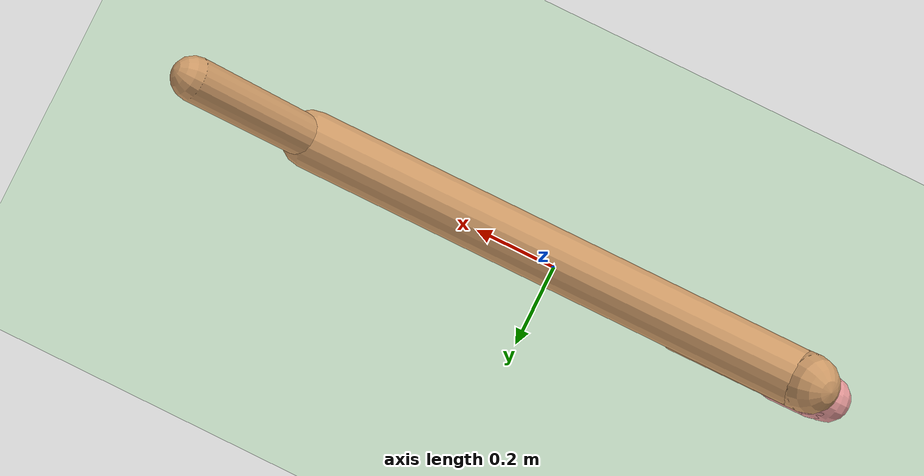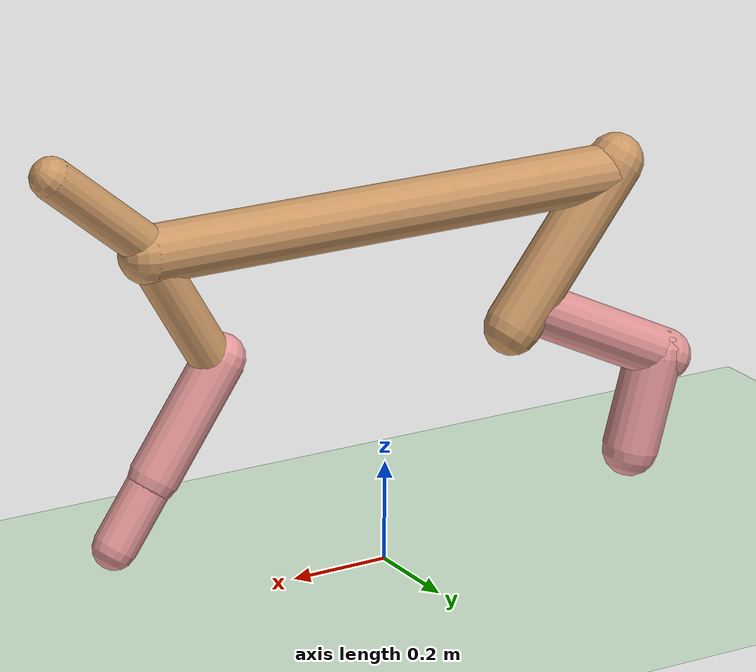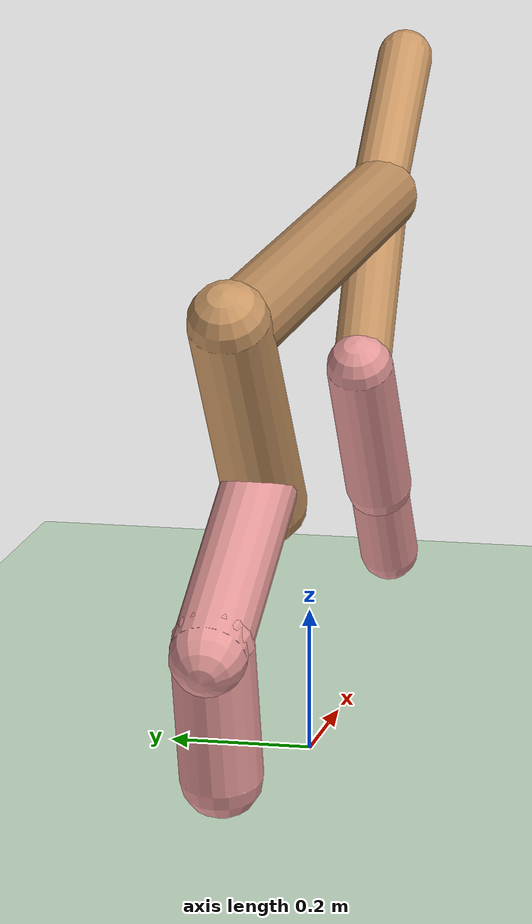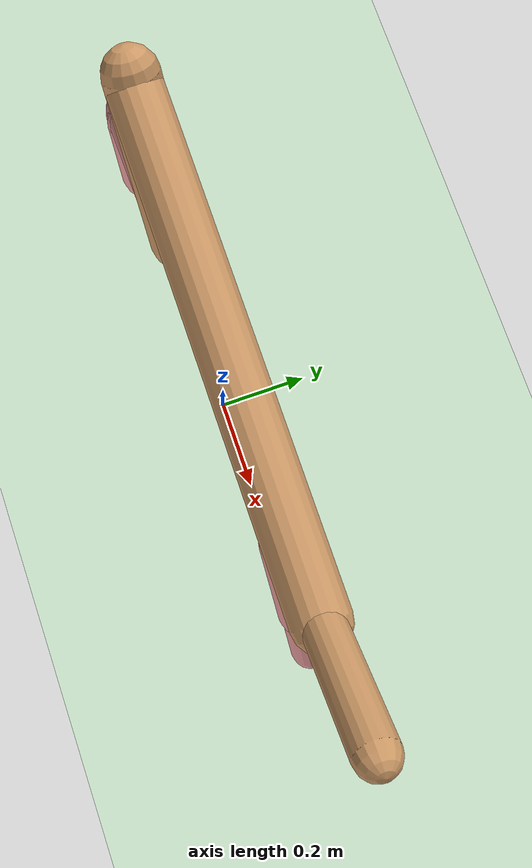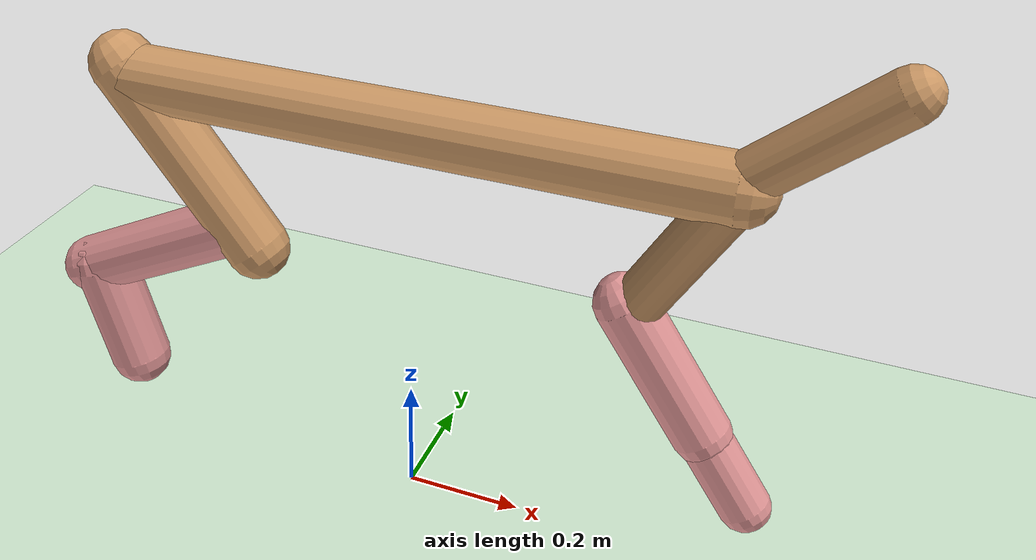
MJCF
<?xml version="1.0" encoding="utf-8"?>
<mujoco model="cheetah">
	<compiler angle="radian" coordinate="local" inertiafromgeom="true" settotalmass="14"></compiler>
	<default>
		<joint armature=".1" damping="0.008831656141242318" limited="true" solimplimit="0 .8 .03" solreflimit=".02 1" stiffness="8.779101482675491"></joint>
		<geom conaffinity="0" condim="3" contype="1" friction="0.37335225855661974 0.07025268687055089 0.10649881059474586" rgba="0.8 0.6 .4 1" solimp="0.0 0.8 0.01" solref="0.02 1"></geom>
		<motor ctrllimited="true" ctrlrange="-1 1"></motor>
	</default>
	<size nstack="300000" nuser_geom="1"></size>
	<option gravity="0 0 -9.81" timestep="0.01"></option>
	<asset>
		<texture builtin="gradient" height="100" rgb1="1 1 1" rgb2="0 0 0" type="skybox" width="100"></texture>
		<texture builtin="flat" height="1278" mark="cross" markrgb="1 1 1" name="texgeom" random="0.01" rgb1="0.8 0.6 0.4" rgb2="0.8 0.6 0.4" type="cube" width="127"></texture>
		<texture builtin="checker" height="100" name="texplane" rgb1="0 0 0" rgb2="0.8 0.8 0.8" type="2d" width="100"></texture>
		<material name="MatPlane" reflectance="0.5" shininess="1" specular="1" texrepeat="60 60" texture="texplane"></material>
		<material name="geom" texture="texgeom" texuniform="true"></material>
	</asset>
	<worldbody>
		<light cutoff="100" diffuse="1 1 1" dir="-0 0 -1.3" directional="true" exponent="1" pos="0 0 1.3" specular=".1 .1 .1"></light>
		<geom conaffinity="1" condim="3" material="MatPlane" name="floor" pos="0 0 0" rgba="0.8 0.9 0.8 1" size="38.10647690931181 42.04886904404232 28.037943545620653" type="plane"></geom>
		<body name="torso" pos="0 0 .7">
			<camera name="track" mode="trackcom" pos="0 -3 0.3" xyaxes="1 0 0 0 0 1"></camera>
			<joint armature="0" axis="1 0 0" damping="0.0" limited="false" name="rootx" pos="0 0 0" stiffness="0.0" type="slide"></joint>
			<joint armature="0" axis="0 0 1" damping="0.0" limited="false" name="rootz" pos="0 0 0" stiffness="0.0" type="slide"></joint>
			<joint armature="0" axis="0 1 0" damping="0.0" limited="false" name="rooty" pos="0 0 0" stiffness="0.0" type="hinge"></joint>
			<geom fromto="-.5 0 0 .5 0 0" name="torso" size="0.05523922363717367" type="capsule"></geom>
			<geom axisangle="0 1 0 .87" name="head" pos=".6 0 .1" size="0.04039386192894422 0.11796875036418836" type="capsule"></geom>
			<body name="bthigh" pos="-.5 0 0">
				<joint axis="0 1 0" damping="7.507767391212177" name="bthigh" pos="0 0 0" range="-.52 1.05" stiffness="258.91668962109225" type="hinge"></joint>
				<geom axisangle="0 1 0 -3.8" name="bthigh" pos=".1 0 -.13" size="0.055790830782767954 0.18838468876367426" type="capsule"></geom>
				<body name="bshin" pos=".16 0 -.25">
					<joint axis="0 1 0" damping="4.557999150326886" name="bshin" pos="0 0 0" range="-.785 .785" stiffness="212.31501852076812" type="hinge"></joint>
					<geom axisangle="0 1 0 -2.03" name="bshin" pos="-.14 0 -.07" rgba="0.9 0.6 0.6 1" size="0.05236183954911034 0.18021421953842676" type="capsule"></geom>
					<body name="bfoot" pos="-.28 0 -.14">
						<joint axis="0 1 0" damping="3.4249379975448124" name="bfoot" pos="0 0 0" range="-.4 .785" stiffness="94.76114949876059" type="hinge"></joint>
						<geom axisangle="0 1 0 -.27" name="bfoot" pos=".03 0 -.097" rgba="0.9 0.6 0.6 1" size="0.05609727328049382 0.0987757800119604" type="capsule"></geom>
					</body>
				</body>
			</body>
			<body name="fthigh" pos=".5 0 0">
				<joint axis="0 1 0" damping="5.597609596805491" name="fthigh" pos="0 0 0" range="-1 .7" stiffness="221.78124137772156" type="hinge"></joint>
				<geom axisangle="0 1 0 .52" name="fthigh" pos="-.07 0 -.12" size="0.042087914651116456 0.12381593862648588" type="capsule"></geom>
				<body name="fshin" pos="-.14 0 -.24">
					<joint axis="0 1 0" damping="3.5736870830080667" name="fshin" pos="0 0 0" range="-1.2 .87" stiffness="152.48794764741163" type="hinge"></joint>
					<geom axisangle="0 1 0 -.6" name="fshin" pos=".065 0 -.09" rgba="0.9 0.6 0.6 1" size="0.0487599259354084 0.12692344342976083" type="capsule"></geom>
					<body name="ffoot" pos=".13 0 -.18">
						<joint axis="0 1 0" damping="1.8281852196189174" name="ffoot" pos="0 0 0" range="-.5 .5" stiffness="68.5821259349036" type="hinge"></joint>
						<geom axisangle="0 1 0 -.6" name="ffoot" pos=".045 0 -.07" rgba="0.9 0.6 0.6 1" size="0.0429320247573834 0.08004963654739781" type="capsule"></geom>
					</body>
				</body>
			</body>
		</body>
	</worldbody>
	<actuator>
		<motor gear="120" joint="bthigh" name="bthigh"></motor>
		<motor gear="90" joint="bshin" name="bshin"></motor>
		<motor gear="60" joint="bfoot" name="bfoot"></motor>
		<motor gear="120" joint="fthigh" name="fthigh"></motor>
		<motor gear="60" joint="fshin" name="fshin"></motor>
		<motor gear="30" joint="ffoot" name="ffoot"></motor>
	</actuator>
</mujoco>
